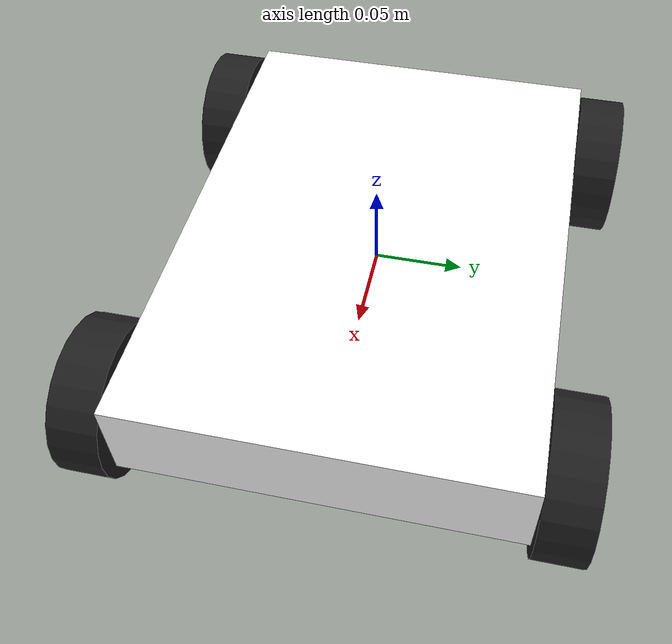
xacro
<?xml version="1.0" ?>
<robot name="mfwr" xmlns:xacro="http://www.ros.org/wiki/xacro">

  <material name="black">
    <color rgba="0.0 0.0 0.0 1.0"/>
  </material>
  <material name="blue">
    <color rgba="0.203125 0.23828125 0.28515625 1.0"/>
  </material>
  <material name="green">
    <color rgba="0.0 0.8 0.0 1.0"/>
  </material>
  <material name="grey">
    <color rgba="0.2 0.2 0.2 1.0"/>
  </material>
  <material name="orange">
    <color rgba="1.0 0.423529411765 0.0392156862745 1.0"/>
  </material>
  <material name="brown">
    <color rgba="0.870588235294 0.811764705882 0.764705882353 1.0"/>
  </material>
  <material name="red">
    <color rgba="0.80078125 0.12890625 0.1328125 1.0"/>
  </material>
  <material name="white">
    <color rgba="1.0 1.0 1.0 1.0"/>
  </material>

<link name="link_chassis">
    <inertial>
        <origin xyz="0.0 0.0 0.0" rpy="0.0 0.0 0.0"/>
        <mass value="0.878"/>
        <inertia ixx="0.003565046" ixy="0.0" ixz="0.0" iyy="0.009967129" iyz="0.0" izz="0.006767916"/>
    </inertial>
    <collision>
        <geometry>
            <box size="0.3 0.215 0.05"/>
        </geometry>
    </collision>
    <visual>
        <origin xyz="0.0 0.0 0.0" rpy="0.0 0.0 0.0"/>
        <geometry>
            <box size="0.3 0.215 0.05"/>
        </geometry>
        <material name="white"/>
    </visual>
</link>

<link name="link_frw">
    <inertial>
        <origin xyz="0.0 0.0 0.0" rpy="0 1.5707 1.5707"/>
        <mass value="0.034"/>
        <inertia ixx="0.00005123" ixy="0.0" ixz="0.0" iyy="0.00005123" iyz="0.0" izz="0.0000307"/>
    </inertial>
    <collision>
        <origin xyz="0 0 0" rpy="0 1.5707 1.5707"/>
        <geometry>
            <cylinder radius="0.0425" length="0.027"/>
        </geometry>
    </collision>
    <visual>
        <origin xyz="0 0 0" rpy="0 1.5707 1.5707"/>
        <geometry>
            <cylinder radius="0.0425" length="0.027"/>
        </geometry>
    </visual>
</link>

<joint name="link_chassis__link_frw" type="continuous">
    <origin xyz="0.1175 0.121 -0.01" rpy="0.0 0.0 0.0"/>
    <parent link="link_chassis"/>
    <child link="link_frw"/>
    <axis xyz="0.0 1.0 0.0" rpy="0 0 0"/>
    <limit effort="100" velocity="100"/>
    <joint_properties damping="0.0" friction="0.0"/>
</joint>

<transmission name="tran1">
    <type>transmission_interface/SimpleTransmission</type>
    <joint name="link_chassis__link_frw">
      <hardwareInterface>EffortJointInterface</hardwareInterface>
    </joint>
    <actuator name="motor1">
      <hardwareInterface>EffortJointInterface</hardwareInterface>
      <mechanicalReduction>1</mechanicalReduction>
    </actuator>
  </transmission>

<link name="link_brw">
    <inertial>
        <origin xyz="0.0 0.0 0.0" rpy="0 1.5707 1.5707"/>
        <mass value="0.034"/>
        <inertia ixx="0.00005123" ixy="0.0" ixz="0.0" iyy="0.00005123" iyz="0.0" izz="0.0000307"/>
    </inertial>
    <collision>
        <origin xyz="0 0 0" rpy="0 1.5707 1.5707"/>
        <geometry>
            <cylinder radius="0.0425" length="0.027"/>
        </geometry>
    </collision>
    <visual>
        <origin xyz="0 0 0" rpy="0 1.5707 1.5707"/>
        <geometry>
            <cylinder radius="0.0425" length="0.027"/>
        </geometry>
    </visual>
</link>
<joint name="link_chassis__link_brw" type="continuous">
    <origin xyz="-0.1175 0.121 -0.01" rpy="0.0 0.0 0.0"/>
    <parent link="link_chassis"/>
    <child link="link_brw"/>
    <axis xyz="0.0 1.0 0.0" rpy="0 0 0"/>
    <limit effort="100" velocity="100"/>
    <joint_properties damping="0.0" friction="0.0"/>
</joint>

<transmission name="tran2">
    <type>transmission_interface/SimpleTransmission</type>
    <joint name="link_chassis__link_brw">
      <hardwareInterface>EffortJointInterface</hardwareInterface>
    </joint>
    <actuator name="motor2">
      <hardwareInterface>EffortJointInterface</hardwareInterface>
      <mechanicalReduction>1</mechanicalReduction>
    </actuator>
  </transmission>

<link name="link_flw">
    <inertial>
        <origin xyz="0.0 0.0 0.0" rpy="0 1.5707 1.5707"/>
        <mass value="0.034"/>
        <inertia ixx="0.00005123" ixy="0.0" ixz="0.0" iyy="0.00005123" iyz="0.0" izz="0.0000307"/>
    </inertial>
    <collision>
        <origin xyz="0 0 0" rpy="0 1.5707 1.5707"/>
        <geometry>
            <cylinder radius="0.0425" length="0.027"/>
        </geometry>
    </collision>
    <visual>
        <origin xyz="0 0 0" rpy="0 1.5707 1.5707"/>
        <geometry>
            <cylinder radius="0.0425" length="0.027"/>
        </geometry>
    </visual>
</link>
<joint name="link_chassis__link_flw" type="continuous">
    <origin xyz="0.1175 -0.121 -0.01" rpy="0.0 0.0 0.0"/>
    <parent link="link_chassis"/>
    <child link="link_flw"/>
    <axis xyz="0.0 1.0 0.0" rpy="0 0 0"/>
    <limit effort="100" velocity="100"/>
    <joint_properties damping="0.0" friction="0.0"/>
</joint>
<transmission name="tran3">
    <type>transmission_interface/SimpleTransmission</type>
    <joint name="link_chassis__link_flw">
      <hardwareInterface>EffortJointInterface</hardwareInterface>
    </joint>
    <actuator name="motor3">
      <hardwareInterface>EffortJointInterface</hardwareInterface>
      <mechanicalReduction>1</mechanicalReduction>
    </actuator>
  </transmission>

<link name="link_blw">
    <inertial>
        <origin xyz="0.0 0.0 0.0" rpy="0 1.5707 1.5707"/>
        <mass value="0.034"/>
        <inertia ixx="0.00005123" ixy="0.0" ixz="0.0" iyy="0.00005123" iyz="0.0" izz="0.0000307"/>
    </inertial>
    <collision>
        <origin xyz="0 0 0" rpy="0 1.5707 1.5707"/>
        <geometry>
            <cylinder radius="0.0425" length="0.027"/>
        </geometry>
    </collision>
    <visual>
        <origin xyz="0 0 0" rpy="0 1.5707 1.5707"/>
        <geometry>
            <cylinder radius="0.0425" length="0.027"/>
        </geometry>
    </visual>
</link>
<joint name="link_chassis__link_blw" type="continuous">
    <origin xyz="-0.1175 -0.121 -0.01" rpy="0.0 0.0 0.0"/>
    <parent link="link_chassis"/>
    <child link="link_blw"/>
    <axis xyz="0.0 1.0 0.0" rpy="0 0 0"/>
    <limit effort="100" velocity="100"/>
    <joint_properties damping="0.0" friction="0.0"/>
</joint>
<transmission name="tran4">
    <type>transmission_interface/SimpleTransmission</type>
    <joint name="link_chassis__link_blw">
      <hardwareInterface>EffortJointInterface</hardwareInterface>
    </joint>
    <actuator name="motor4">
      <hardwareInterface>EffortJointInterface</hardwareInterface>
      <mechanicalReduction>1</mechanicalReduction>
    </actuator>
  </transmission>

  <gazebo>
    <plugin name="gazebo_ros_control" filename="libgazebo_ros_control.so">
      <robotNamespace>/mfwr</robotNamespace>
      <robotSimType>gazebo_ros_control/DefaultRobotHWSim</robotSimType>
    </plugin>
  </gazebo>

  <gazebo reference="link_chassis">
    <material>Gazebo/White</material>
    <turnGravityOff>false</turnGravityOff>
  </gazebo>

  <gazebo reference="link_frw">
    <mu1 value="200.0"/>
    <mu2 value="100.0"/>
    <kp value="10000000.0"/>
    <kd value="1.0"/>
    <material>Gazebo/Black</material>
    <turnGravityOff>false</turnGravityOff>
  </gazebo>

  <gazebo reference="link_brw">
    <mu1 value="200.0"/>
    <mu2 value="100.0"/>
    <kp value="10000000.0"/>
    <kd value="1.0"/>
    <material>Gazebo/Black</material>
    <turnGravityOff>false</turnGravityOff>
  </gazebo>

  <gazebo reference="link_flw">
    <mu1 value="200.0"/>
    <mu2 value="100.0"/>
    <kp value="10000000.0"/>
    <kd value="1.0"/>
    <material>Gazebo/Black</material>
    <turnGravityOff>false</turnGravityOff>
  </gazebo>

  <gazebo reference="link_blw">
    <mu1 value="200.0"/>
    <mu2 value="100.0"/>
    <kp value="10000000.0"/>
    <kd value="1.0"/>
    <material>Gazebo/Black</material>
    <turnGravityOff>false</turnGravityOff>
  </gazebo>

  <gazebo>
  <plugin name="skid_steer_drive_controller" filename="libgazebo_ros_skid_steer_drive.so">
    <updateRate>100.0</updateRate>
    <robotNamespace>/mfwr</robotNamespace>
    <leftFrontJoint>link_chassis__link_flw</leftFrontJoint>
    <rightFrontJoint>link_chassis__link_frw</rightFrontJoint>
    <leftRearJoint>link_chassis__link_blw</leftRearJoint>
    <rightRearJoint>link_chassis__link_brw</rightRearJoint>
    <wheelSeparation>0.235</wheelSeparation>
    <wheelDiameter>0.085</wheelDiameter>
    <robotBaseFrame>link_chassis</robotBaseFrame>
    <torque>20</torque>
    <topicName>cmd_vel</topicName>
    <commandTopic>cmd_vel</commandTopic>
    <broadcastTF>false</broadcastTF>
  </plugin>
</gazebo>

</robot>
